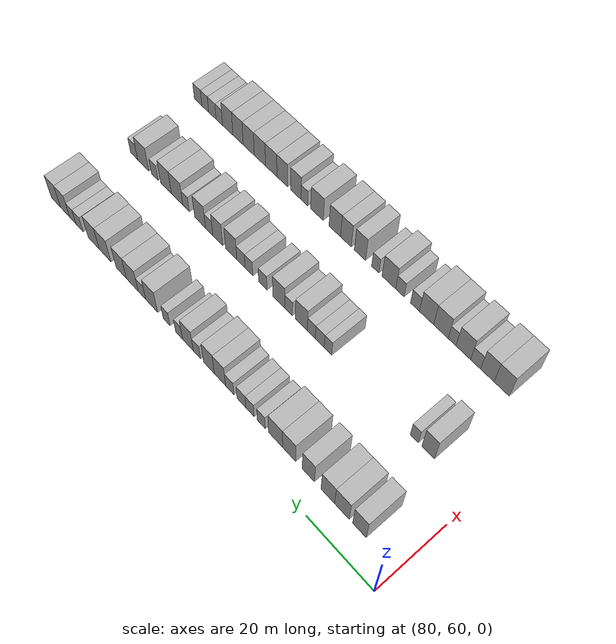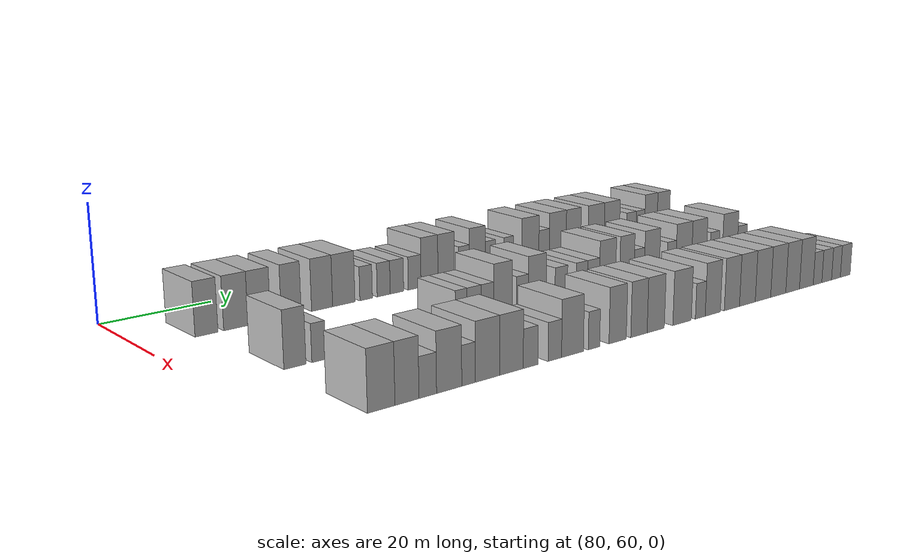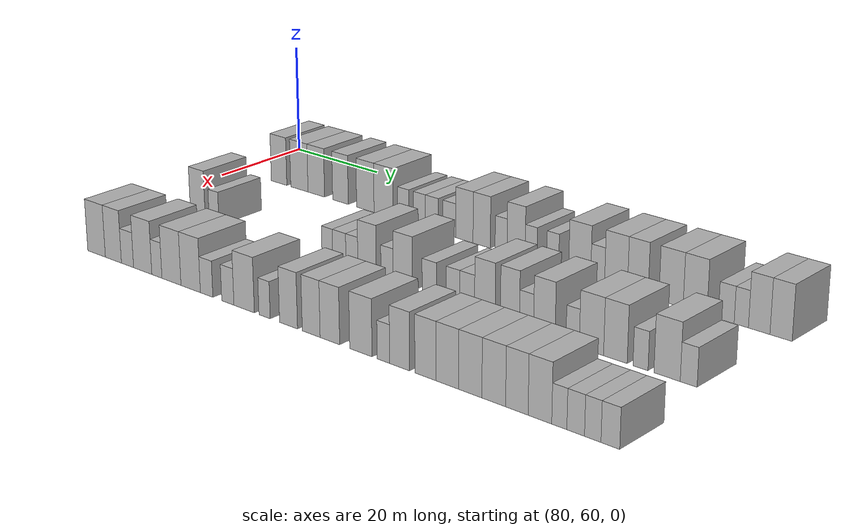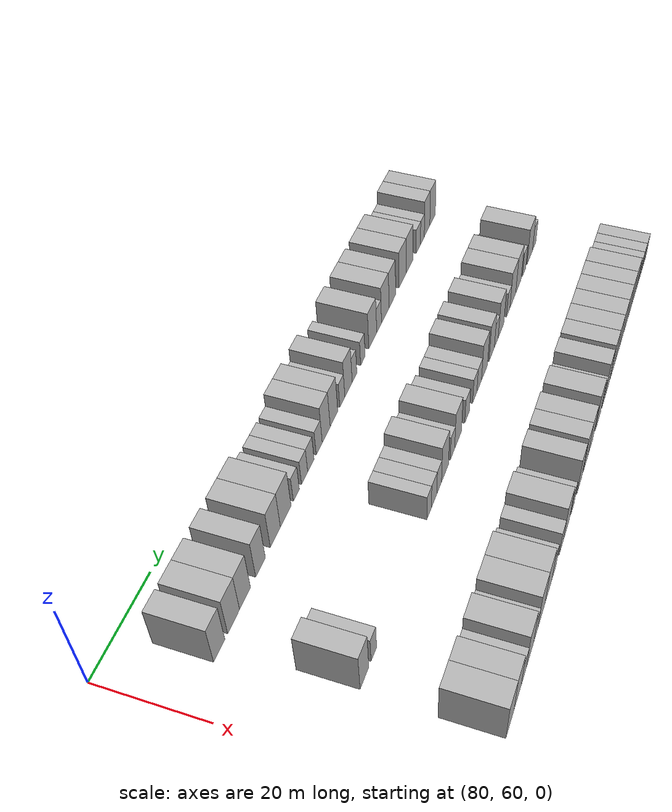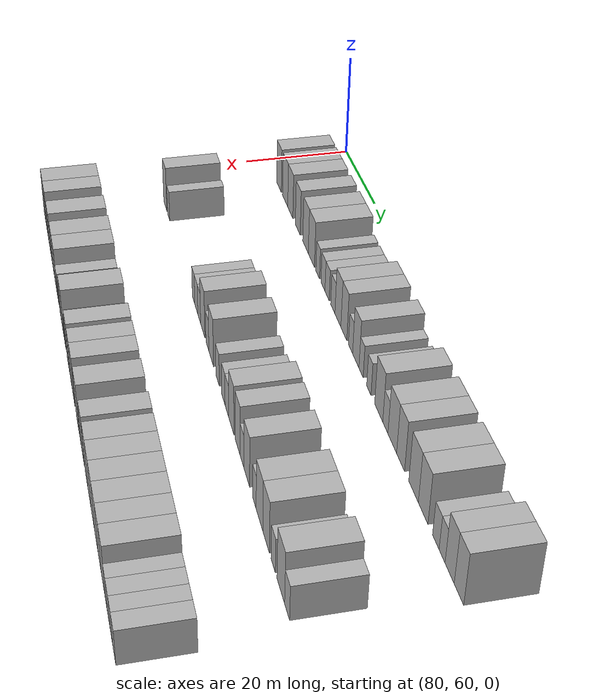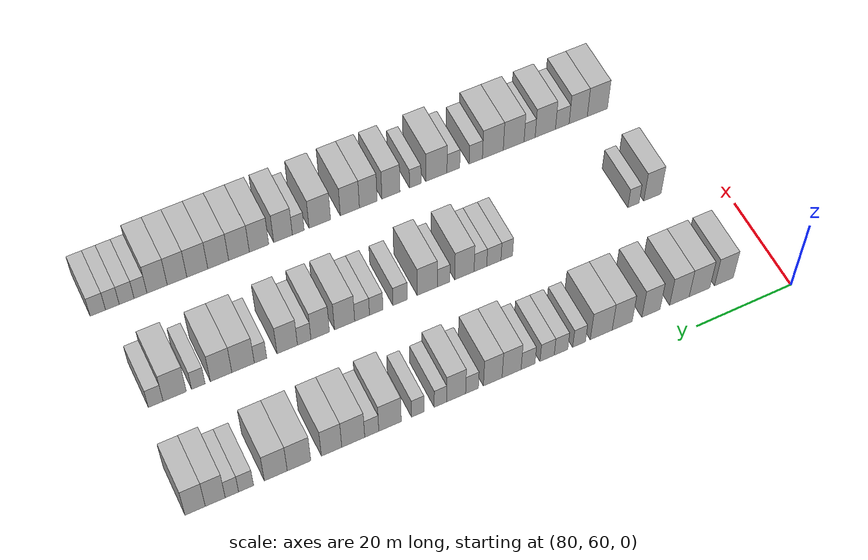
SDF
<sdf version="1.6">
 <world name="default">
  <model name="building_674">
   <static>1</static>
   <pose>91.0000 70.7564 0 0.000000 0.000000 0.000000</pose>
   <link name="link">
    <pose>0 0 4.50 0 0 0</pose>
    <collision name="collision"><geometry><box><size>10.0000 3.9855 9.0000</size></box></geometry></collision>
    <visual name="visual">
     <cast_shadows>0</cast_shadows>
     <geometry><box><size>10.0000 3.9855 9.0000</size></box></geometry>
     <material>
      <script>
       <uri>model://HANNAS_wall/materials/scripts</uri>
       <uri>model://HANNAS_wall/materials/textures</uri>
       <name>vrc/HANNAS_wall</name>
      </script>
     </material>
    </visual>
   </link>
  </model>
  <model name="building_675">
   <static>1</static>
   <pose>91.0000 75.9270 0 0.000000 0.000000 0.000000</pose>
   <link name="link">
    <pose>0 0 4.50 0 0 0</pose>
    <collision name="collision"><geometry><box><size>10.0000 4.3556 9.0000</size></box></geometry></collision>
    <visual name="visual">
     <cast_shadows>0</cast_shadows>
     <geometry><box><size>10.0000 4.3556 9.0000</size></box></geometry>
     <material>
      <script>
       <uri>model://HANNAS_wall/materials/scripts</uri>
       <uri>model://HANNAS_wall/materials/textures</uri>
       <name>vrc/HANNAS_wall</name>
      </script>
     </material>
    </visual>
   </link>
  </model>
  <model name="building_676">
   <static>1</static>
   <pose>91.0000 80.1607 0 0.000000 0.000000 0.000000</pose>
   <link name="link">
    <pose>0 0 4.50 0 0 0</pose>
    <collision name="collision"><geometry><box><size>10.0000 4.1119 9.0000</size></box></geometry></collision>
    <visual name="visual">
     <cast_shadows>0</cast_shadows>
     <geometry><box><size>10.0000 4.1119 9.0000</size></box></geometry>
     <material>
      <script>
       <uri>model://HANNAS_wall/materials/scripts</uri>
       <uri>model://HANNAS_wall/materials/textures</uri>
       <name>vrc/HANNAS_wall</name>
      </script>
     </material>
    </visual>
   </link>
  </model>
  <model name="building_677">
   <static>1</static>
   <pose>91.0000 86.1120 0 0.000000 0.000000 0.000000</pose>
   <link name="link">
    <pose>0 0 4.50 0 0 0</pose>
    <collision name="collision"><geometry><box><size>10.0000 3.7906 9.0000</size></box></geometry></collision>
    <visual name="visual">
     <cast_shadows>0</cast_shadows>
     <geometry><box><size>10.0000 3.7906 9.0000</size></box></geometry>
     <material>
      <script>
       <uri>model://HANNAS_wall/materials/scripts</uri>
       <uri>model://HANNAS_wall/materials/textures</uri>
       <name>vrc/HANNAS_wall</name>
      </script>
     </material>
    </visual>
   </link>
  </model>
  <model name="building_678">
   <static>1</static>
   <pose>91.0000 92.0778 0 0.000000 0.000000 0.000000</pose>
   <link name="link">
    <pose>0 0 4.50 0 0 0</pose>
    <collision name="collision"><geometry><box><size>10.0000 4.1410 9.0000</size></box></geometry></collision>
    <visual name="visual">
     <cast_shadows>0</cast_shadows>
     <geometry><box><size>10.0000 4.1410 9.0000</size></box></geometry>
     <material>
      <script>
       <uri>model://HANNAS_wall/materials/scripts</uri>
       <uri>model://HANNAS_wall/materials/textures</uri>
       <name>vrc/HANNAS_wall</name>
      </script>
     </material>
    </visual>
   </link>
  </model>
  <model name="building_679">
   <static>1</static>
   <pose>91.0000 96.3968 0 0.000000 0.000000 0.000000</pose>
   <link name="link">
    <pose>0 0 4.50 0 0 0</pose>
    <collision name="collision"><geometry><box><size>10.0000 4.4971 9.0000</size></box></geometry></collision>
    <visual name="visual">
     <cast_shadows>0</cast_shadows>
     <geometry><box><size>10.0000 4.4971 9.0000</size></box></geometry>
     <material>
      <script>
       <uri>model://HANNAS_wall/materials/scripts</uri>
       <uri>model://HANNAS_wall/materials/textures</uri>
       <name>vrc/HANNAS_wall</name>
      </script>
     </material>
    </visual>
   </link>
  </model>
  <model name="building_680">
   <static>1</static>
   <pose>91.0000 100.9475 0 0.000000 0.000000 0.000000</pose>
   <link name="link">
    <pose>0 0 3.00 0 0 0</pose>
    <collision name="collision"><geometry><box><size>10.0000 2.6044 6.0000</size></box></geometry></collision>
    <visual name="visual">
     <cast_shadows>0</cast_shadows>
     <geometry><box><size>10.0000 2.6044 6.0000</size></box></geometry>
     <material>
      <script>
       <uri>model://HANNAS_wall/materials/scripts</uri>
       <uri>model://HANNAS_wall/materials/textures</uri>
       <name>vrc/HANNAS_wall</name>
      </script>
     </material>
    </visual>
   </link>
  </model>
  <model name="building_681">
   <static>1</static>
   <pose>91.0000 104.6256 0 0.000000 0.000000 0.000000</pose>
   <link name="link">
    <pose>0 0 3.00 0 0 0</pose>
    <collision name="collision"><geometry><box><size>10.0000 2.7519 6.0000</size></box></geometry></collision>
    <visual name="visual">
     <cast_shadows>0</cast_shadows>
     <geometry><box><size>10.0000 2.7519 6.0000</size></box></geometry>
     <material>
      <script>
       <uri>model://HANNAS_wall/materials/scripts</uri>
       <uri>model://HANNAS_wall/materials/textures</uri>
       <name>vrc/HANNAS_wall</name>
      </script>
     </material>
    </visual>
   </link>
  </model>
  <model name="building_682">
   <static>1</static>
   <pose>91.0000 107.4421 0 0.000000 0.000000 0.000000</pose>
   <link name="link">
    <pose>0 0 3.00 0 0 0</pose>
    <collision name="collision"><geometry><box><size>10.0000 2.8810 6.0000</size></box></geometry></collision>
    <visual name="visual">
     <cast_shadows>0</cast_shadows>
     <geometry><box><size>10.0000 2.8810 6.0000</size></box></geometry>
     <material>
      <script>
       <uri>model://HANNAS_wall/materials/scripts</uri>
       <uri>model://HANNAS_wall/materials/textures</uri>
       <name>vrc/HANNAS_wall</name>
      </script>
     </material>
    </visual>
   </link>
  </model>
  <model name="building_683">
   <static>1</static>
   <pose>91.0000 111.2855 0 0.000000 0.000000 0.000000</pose>
   <link name="link">
    <pose>0 0 3.00 0 0 0</pose>
    <collision name="collision"><geometry><box><size>10.0000 2.8058 6.0000</size></box></geometry></collision>
    <visual name="visual">
     <cast_shadows>0</cast_shadows>
     <geometry><box><size>10.0000 2.8058 6.0000</size></box></geometry>
     <material>
      <script>
       <uri>model://HANNAS_wall/materials/scripts</uri>
       <uri>model://HANNAS_wall/materials/textures</uri>
       <name>vrc/HANNAS_wall</name>
      </script>
     </material>
    </visual>
   </link>
  </model>
  <model name="building_684">
   <static>1</static>
   <pose>91.0000 114.5860 0 0.000000 0.000000 0.000000</pose>
   <link name="link">
    <pose>0 0 4.50 0 0 0</pose>
    <collision name="collision"><geometry><box><size>10.0000 3.7952 9.0000</size></box></geometry></collision>
    <visual name="visual">
     <cast_shadows>0</cast_shadows>
     <geometry><box><size>10.0000 3.7952 9.0000</size></box></geometry>
     <material>
      <script>
       <uri>model://HANNAS_wall/materials/scripts</uri>
       <uri>model://HANNAS_wall/materials/textures</uri>
       <name>vrc/HANNAS_wall</name>
      </script>
     </material>
    </visual>
   </link>
  </model>
  <model name="building_685">
   <static>1</static>
   <pose>91.0000 118.3412 0 0.000000 0.000000 0.000000</pose>
   <link name="link">
    <pose>0 0 4.50 0 0 0</pose>
    <collision name="collision"><geometry><box><size>10.0000 3.7152 9.0000</size></box></geometry></collision>
    <visual name="visual">
     <cast_shadows>0</cast_shadows>
     <geometry><box><size>10.0000 3.7152 9.0000</size></box></geometry>
     <material>
      <script>
       <uri>model://HANNAS_wall/materials/scripts</uri>
       <uri>model://HANNAS_wall/materials/textures</uri>
       <name>vrc/HANNAS_wall</name>
      </script>
     </material>
    </visual>
   </link>
  </model>
  <model name="building_686">
   <static>1</static>
   <pose>91.0000 122.4623 0 0.000000 0.000000 0.000000</pose>
   <link name="link">
    <pose>0 0 3.00 0 0 0</pose>
    <collision name="collision"><geometry><box><size>10.0000 2.5271 6.0000</size></box></geometry></collision>
    <visual name="visual">
     <cast_shadows>0</cast_shadows>
     <geometry><box><size>10.0000 2.5271 6.0000</size></box></geometry>
     <material>
      <script>
       <uri>model://HANNAS_wall/materials/scripts</uri>
       <uri>model://HANNAS_wall/materials/textures</uri>
       <name>vrc/HANNAS_wall</name>
      </script>
     </material>
    </visual>
   </link>
  </model>
  <model name="building_687">
   <static>1</static>
   <pose>91.0000 125.6069 0 0.000000 0.000000 0.000000</pose>
   <link name="link">
    <pose>0 0 4.50 0 0 0</pose>
    <collision name="collision"><geometry><box><size>10.0000 3.7621 9.0000</size></box></geometry></collision>
    <visual name="visual">
     <cast_shadows>0</cast_shadows>
     <geometry><box><size>10.0000 3.7621 9.0000</size></box></geometry>
     <material>
      <script>
       <uri>model://HANNAS_wall/materials/scripts</uri>
       <uri>model://HANNAS_wall/materials/textures</uri>
       <name>vrc/HANNAS_wall</name>
      </script>
     </material>
    </visual>
   </link>
  </model>
  <model name="building_688">
   <static>1</static>
   <pose>91.0000 128.6963 0 0.000000 0.000000 0.000000</pose>
   <link name="link">
    <pose>0 0 3.00 0 0 0</pose>
    <collision name="collision"><geometry><box><size>10.0000 2.4166 6.0000</size></box></geometry></collision>
    <visual name="visual">
     <cast_shadows>0</cast_shadows>
     <geometry><box><size>10.0000 2.4166 6.0000</size></box></geometry>
     <material>
      <script>
       <uri>model://HANNAS_wall/materials/scripts</uri>
       <uri>model://HANNAS_wall/materials/textures</uri>
       <name>vrc/HANNAS_wall</name>
      </script>
     </material>
    </visual>
   </link>
  </model>
  <model name="building_689">
   <static>1</static>
   <pose>91.0000 133.1181 0 0.000000 0.000000 0.000000</pose>
   <link name="link">
    <pose>0 0 3.00 0 0 0</pose>
    <collision name="collision"><geometry><box><size>10.0000 2.4272 6.0000</size></box></geometry></collision>
    <visual name="visual">
     <cast_shadows>0</cast_shadows>
     <geometry><box><size>10.0000 2.4272 6.0000</size></box></geometry>
     <material>
      <script>
       <uri>model://HANNAS_wall/materials/scripts</uri>
       <uri>model://HANNAS_wall/materials/textures</uri>
       <name>vrc/HANNAS_wall</name>
      </script>
     </material>
    </visual>
   </link>
  </model>
  <model name="building_690">
   <static>1</static>
   <pose>91.0000 138.5089 0 0.000000 0.000000 0.000000</pose>
   <link name="link">
    <pose>0 0 4.50 0 0 0</pose>
    <collision name="collision"><geometry><box><size>10.0000 4.3544 9.0000</size></box></geometry></collision>
    <visual name="visual">
     <cast_shadows>0</cast_shadows>
     <geometry><box><size>10.0000 4.3544 9.0000</size></box></geometry>
     <material>
      <script>
       <uri>model://HANNAS_wall/materials/scripts</uri>
       <uri>model://HANNAS_wall/materials/textures</uri>
       <name>vrc/HANNAS_wall</name>
      </script>
     </material>
    </visual>
   </link>
  </model>
  <model name="building_691">
   <static>1</static>
   <pose>91.0000 142.0402 0 0.000000 0.000000 0.000000</pose>
   <link name="link">
    <pose>0 0 3.00 0 0 0</pose>
    <collision name="collision"><geometry><box><size>10.0000 2.7080 6.0000</size></box></geometry></collision>
    <visual name="visual">
     <cast_shadows>0</cast_shadows>
     <geometry><box><size>10.0000 2.7080 6.0000</size></box></geometry>
     <material>
      <script>
       <uri>model://HANNAS_wall/materials/scripts</uri>
       <uri>model://HANNAS_wall/materials/textures</uri>
       <name>vrc/HANNAS_wall</name>
      </script>
     </material>
    </visual>
   </link>
  </model>
  <model name="building_692">
   <static>1</static>
   <pose>91.0000 145.5896 0 0.000000 0.000000 0.000000</pose>
   <link name="link">
    <pose>0 0 4.50 0 0 0</pose>
    <collision name="collision"><geometry><box><size>10.0000 4.3909 9.0000</size></box></geometry></collision>
    <visual name="visual">
     <cast_shadows>0</cast_shadows>
     <geometry><box><size>10.0000 4.3909 9.0000</size></box></geometry>
     <material>
      <script>
       <uri>model://HANNAS_wall/materials/scripts</uri>
       <uri>model://HANNAS_wall/materials/textures</uri>
       <name>vrc/HANNAS_wall</name>
      </script>
     </material>
    </visual>
   </link>
  </model>
  <model name="building_693">
   <static>1</static>
   <pose>91.0000 149.7306 0 0.000000 0.000000 0.000000</pose>
   <link name="link">
    <pose>0 0 4.50 0 0 0</pose>
    <collision name="collision"><geometry><box><size>10.0000 3.8910 9.0000</size></box></geometry></collision>
    <visual name="visual">
     <cast_shadows>0</cast_shadows>
     <geometry><box><size>10.0000 3.8910 9.0000</size></box></geometry>
     <material>
      <script>
       <uri>model://HANNAS_wall/materials/scripts</uri>
       <uri>model://HANNAS_wall/materials/textures</uri>
       <name>vrc/HANNAS_wall</name>
      </script>
     </material>
    </visual>
   </link>
  </model>
  <model name="building_694">
   <static>1</static>
   <pose>91.0000 155.8999 0 0.000000 0.000000 0.000000</pose>
   <link name="link">
    <pose>0 0 4.50 0 0 0</pose>
    <collision name="collision"><geometry><box><size>10.0000 4.4476 9.0000</size></box></geometry></collision>
    <visual name="visual">
     <cast_shadows>0</cast_shadows>
     <geometry><box><size>10.0000 4.4476 9.0000</size></box></geometry>
     <material>
      <script>
       <uri>model://HANNAS_wall/materials/scripts</uri>
       <uri>model://HANNAS_wall/materials/textures</uri>
       <name>vrc/HANNAS_wall</name>
      </script>
     </material>
    </visual>
   </link>
  </model>
  <model name="building_695">
   <static>1</static>
   <pose>91.0000 160.2769 0 0.000000 0.000000 0.000000</pose>
   <link name="link">
    <pose>0 0 4.50 0 0 0</pose>
    <collision name="collision"><geometry><box><size>10.0000 4.3065 9.0000</size></box></geometry></collision>
    <visual name="visual">
     <cast_shadows>0</cast_shadows>
     <geometry><box><size>10.0000 4.3065 9.0000</size></box></geometry>
     <material>
      <script>
       <uri>model://HANNAS_wall/materials/scripts</uri>
       <uri>model://HANNAS_wall/materials/textures</uri>
       <name>vrc/HANNAS_wall</name>
      </script>
     </material>
    </visual>
   </link>
  </model>
  <model name="building_696">
   <static>1</static>
   <pose>91.0000 165.8252 0 0.000000 0.000000 0.000000</pose>
   <link name="link">
    <pose>0 0 3.00 0 0 0</pose>
    <collision name="collision"><geometry><box><size>10.0000 2.7901 6.0000</size></box></geometry></collision>
    <visual name="visual">
     <cast_shadows>0</cast_shadows>
     <geometry><box><size>10.0000 2.7901 6.0000</size></box></geometry>
     <material>
      <script>
       <uri>model://HANNAS_wall/materials/scripts</uri>
       <uri>model://HANNAS_wall/materials/textures</uri>
       <name>vrc/HANNAS_wall</name>
      </script>
     </material>
    </visual>
   </link>
  </model>
  <model name="building_697">
   <static>1</static>
   <pose>91.0000 168.4584 0 0.000000 0.000000 0.000000</pose>
   <link name="link">
    <pose>0 0 3.00 0 0 0</pose>
    <collision name="collision"><geometry><box><size>10.0000 2.4763 6.0000</size></box></geometry></collision>
    <visual name="visual">
     <cast_shadows>0</cast_shadows>
     <geometry><box><size>10.0000 2.4763 6.0000</size></box></geometry>
     <material>
      <script>
       <uri>model://HANNAS_wall/materials/scripts</uri>
       <uri>model://HANNAS_wall/materials/textures</uri>
       <name>vrc/HANNAS_wall</name>
      </script>
     </material>
    </visual>
   </link>
  </model>
  <model name="building_698">
   <static>1</static>
   <pose>91.0000 171.5422 0 0.000000 0.000000 0.000000</pose>
   <link name="link">
    <pose>0 0 4.50 0 0 0</pose>
    <collision name="collision"><geometry><box><size>10.0000 3.6912 9.0000</size></box></geometry></collision>
    <visual name="visual">
     <cast_shadows>0</cast_shadows>
     <geometry><box><size>10.0000 3.6912 9.0000</size></box></geometry>
     <material>
      <script>
       <uri>model://HANNAS_wall/materials/scripts</uri>
       <uri>model://HANNAS_wall/materials/textures</uri>
       <name>vrc/HANNAS_wall</name>
      </script>
     </material>
    </visual>
   </link>
  </model>
  <model name="building_699">
   <static>1</static>
   <pose>91.0000 175.2581 0 0.000000 0.000000 0.000000</pose>
   <link name="link">
    <pose>0 0 4.50 0 0 0</pose>
    <collision name="collision"><geometry><box><size>10.0000 3.7407 9.0000</size></box></geometry></collision>
    <visual name="visual">
     <cast_shadows>0</cast_shadows>
     <geometry><box><size>10.0000 3.7407 9.0000</size></box></geometry>
     <material>
      <script>
       <uri>model://HANNAS_wall/materials/scripts</uri>
       <uri>model://HANNAS_wall/materials/textures</uri>
       <name>vrc/HANNAS_wall</name>
      </script>
     </material>
    </visual>
   </link>
  </model>
  <model name="building_858">
   <static>1</static>
   <pose>113.0000 73.3477 0 0.000000 0.000000 0.000000</pose>
   <link name="link">
    <pose>0 0 4.50 0 0 0</pose>
    <collision name="collision"><geometry><box><size>10.0000 3.7284 9.0000</size></box></geometry></collision>
    <visual name="visual">
     <cast_shadows>0</cast_shadows>
     <geometry><box><size>10.0000 3.7284 9.0000</size></box></geometry>
     <material>
      <script>
       <uri>model://HANNAS_wall/materials/scripts</uri>
       <uri>model://HANNAS_wall/materials/textures</uri>
       <name>vrc/HANNAS_wall</name>
      </script>
     </material>
    </visual>
   </link>
  </model>
  <model name="building_859">
   <static>1</static>
   <pose>113.0000 77.4248 0 0.000000 0.000000 0.000000</pose>
   <link name="link">
    <pose>0 0 3.00 0 0 0</pose>
    <collision name="collision"><geometry><box><size>10.0000 2.4257 6.0000</size></box></geometry></collision>
    <visual name="visual">
     <cast_shadows>0</cast_shadows>
     <geometry><box><size>10.0000 2.4257 6.0000</size></box></geometry>
     <material>
      <script>
       <uri>model://HANNAS_wall/materials/scripts</uri>
       <uri>model://HANNAS_wall/materials/textures</uri>
       <name>vrc/HANNAS_wall</name>
      </script>
     </material>
    </visual>
   </link>
  </model>
  <model name="building_860">
   <static>1</static>
   <pose>113.0000 104.2525 0 0.000000 0.000000 0.000000</pose>
   <link name="link">
    <pose>0 0 3.00 0 0 0</pose>
    <collision name="collision"><geometry><box><size>10.0000 2.4099 6.0000</size></box></geometry></collision>
    <visual name="visual">
     <cast_shadows>0</cast_shadows>
     <geometry><box><size>10.0000 2.4099 6.0000</size></box></geometry>
     <material>
      <script>
       <uri>model://HANNAS_wall/materials/scripts</uri>
       <uri>model://HANNAS_wall/materials/textures</uri>
       <name>vrc/HANNAS_wall</name>
      </script>
     </material>
    </visual>
   </link>
  </model>
  <model name="building_861">
   <static>1</static>
   <pose>113.0000 106.9293 0 0.000000 0.000000 0.000000</pose>
   <link name="link">
    <pose>0 0 3.00 0 0 0</pose>
    <collision name="collision"><geometry><box><size>10.0000 2.9437 6.0000</size></box></geometry></collision>
    <visual name="visual">
     <cast_shadows>0</cast_shadows>
     <geometry><box><size>10.0000 2.9437 6.0000</size></box></geometry>
     <material>
      <script>
       <uri>model://HANNAS_wall/materials/scripts</uri>
       <uri>model://HANNAS_wall/materials/textures</uri>
       <name>vrc/HANNAS_wall</name>
      </script>
     </material>
    </visual>
   </link>
  </model>
  <model name="building_862">
   <static>1</static>
   <pose>113.0000 109.7080 0 0.000000 0.000000 0.000000</pose>
   <link name="link">
    <pose>0 0 3.00 0 0 0</pose>
    <collision name="collision"><geometry><box><size>10.0000 2.6137 6.0000</size></box></geometry></collision>
    <visual name="visual">
     <cast_shadows>0</cast_shadows>
     <geometry><box><size>10.0000 2.6137 6.0000</size></box></geometry>
     <material>
      <script>
       <uri>model://HANNAS_wall/materials/scripts</uri>
       <uri>model://HANNAS_wall/materials/textures</uri>
       <name>vrc/HANNAS_wall</name>
      </script>
     </material>
    </visual>
   </link>
  </model>
  <model name="building_863">
   <static>1</static>
   <pose>113.0000 113.0044 0 0.000000 0.000000 0.000000</pose>
   <link name="link">
    <pose>0 0 4.50 0 0 0</pose>
    <collision name="collision"><geometry><box><size>10.0000 3.9791 9.0000</size></box></geometry></collision>
    <visual name="visual">
     <cast_shadows>0</cast_shadows>
     <geometry><box><size>10.0000 3.9791 9.0000</size></box></geometry>
     <material>
      <script>
       <uri>model://HANNAS_wall/materials/scripts</uri>
       <uri>model://HANNAS_wall/materials/textures</uri>
       <name>vrc/HANNAS_wall</name>
      </script>
     </material>
    </visual>
   </link>
  </model>
  <model name="building_864">
   <static>1</static>
   <pose>113.0000 117.2807 0 0.000000 0.000000 0.000000</pose>
   <link name="link">
    <pose>0 0 3.00 0 0 0</pose>
    <collision name="collision"><geometry><box><size>10.0000 2.5735 6.0000</size></box></geometry></collision>
    <visual name="visual">
     <cast_shadows>0</cast_shadows>
     <geometry><box><size>10.0000 2.5735 6.0000</size></box></geometry>
     <material>
      <script>
       <uri>model://HANNAS_wall/materials/scripts</uri>
       <uri>model://HANNAS_wall/materials/textures</uri>
       <name>vrc/HANNAS_wall</name>
      </script>
     </material>
    </visual>
   </link>
  </model>
  <model name="building_865">
   <static>1</static>
   <pose>113.0000 120.5992 0 0.000000 0.000000 0.000000</pose>
   <link name="link">
    <pose>0 0 4.50 0 0 0</pose>
    <collision name="collision"><geometry><box><size>10.0000 4.0636 9.0000</size></box></geometry></collision>
    <visual name="visual">
     <cast_shadows>0</cast_shadows>
     <geometry><box><size>10.0000 4.0636 9.0000</size></box></geometry>
     <material>
      <script>
       <uri>model://HANNAS_wall/materials/scripts</uri>
       <uri>model://HANNAS_wall/materials/textures</uri>
       <name>vrc/HANNAS_wall</name>
      </script>
     </material>
    </visual>
   </link>
  </model>
  <model name="building_866">
   <static>1</static>
   <pose>113.0000 126.0811 0 0.000000 0.000000 0.000000</pose>
   <link name="link">
    <pose>0 0 3.00 0 0 0</pose>
    <collision name="collision"><geometry><box><size>10.0000 2.9002 6.0000</size></box></geometry></collision>
    <visual name="visual">
     <cast_shadows>0</cast_shadows>
     <geometry><box><size>10.0000 2.9002 6.0000</size></box></geometry>
     <material>
      <script>
       <uri>model://HANNAS_wall/materials/scripts</uri>
       <uri>model://HANNAS_wall/materials/textures</uri>
       <name>vrc/HANNAS_wall</name>
      </script>
     </material>
    </visual>
   </link>
  </model>
  <model name="building_867">
   <static>1</static>
   <pose>113.0000 130.8853 0 0.000000 0.000000 0.000000</pose>
   <link name="link">
    <pose>0 0 3.00 0 0 0</pose>
    <collision name="collision"><geometry><box><size>10.0000 2.7083 6.0000</size></box></geometry></collision>
    <visual name="visual">
     <cast_shadows>0</cast_shadows>
     <geometry><box><size>10.0000 2.7083 6.0000</size></box></geometry>
     <material>
      <script>
       <uri>model://HANNAS_wall/materials/scripts</uri>
       <uri>model://HANNAS_wall/materials/textures</uri>
       <name>vrc/HANNAS_wall</name>
      </script>
     </material>
    </visual>
   </link>
  </model>
  <model name="building_868">
   <static>1</static>
   <pose>113.0000 133.7141 0 0.000000 0.000000 0.000000</pose>
   <link name="link">
    <pose>0 0 3.00 0 0 0</pose>
    <collision name="collision"><geometry><box><size>10.0000 2.9492 6.0000</size></box></geometry></collision>
    <visual name="visual">
     <cast_shadows>0</cast_shadows>
     <geometry><box><size>10.0000 2.9492 6.0000</size></box></geometry>
     <material>
      <script>
       <uri>model://HANNAS_wall/materials/scripts</uri>
       <uri>model://HANNAS_wall/materials/textures</uri>
       <name>vrc/HANNAS_wall</name>
      </script>
     </material>
    </visual>
   </link>
  </model>
  <model name="building_869">
   <static>1</static>
   <pose>113.0000 137.1981 0 0.000000 0.000000 0.000000</pose>
   <link name="link">
    <pose>0 0 4.50 0 0 0</pose>
    <collision name="collision"><geometry><box><size>10.0000 4.0188 9.0000</size></box></geometry></collision>
    <visual name="visual">
     <cast_shadows>0</cast_shadows>
     <geometry><box><size>10.0000 4.0188 9.0000</size></box></geometry>
     <material>
      <script>
       <uri>model://HANNAS_wall/materials/scripts</uri>
       <uri>model://HANNAS_wall/materials/textures</uri>
       <name>vrc/HANNAS_wall</name>
      </script>
     </material>
    </visual>
   </link>
  </model>
  <model name="building_870">
   <static>1</static>
   <pose>113.0000 142.0273 0 0.000000 0.000000 0.000000</pose>
   <link name="link">
    <pose>0 0 4.50 0 0 0</pose>
    <collision name="collision"><geometry><box><size>10.0000 3.6395 9.0000</size></box></geometry></collision>
    <visual name="visual">
     <cast_shadows>0</cast_shadows>
     <geometry><box><size>10.0000 3.6395 9.0000</size></box></geometry>
     <material>
      <script>
       <uri>model://HANNAS_wall/materials/scripts</uri>
       <uri>model://HANNAS_wall/materials/textures</uri>
       <name>vrc/HANNAS_wall</name>
      </script>
     </material>
    </visual>
   </link>
  </model>
  <model name="building_871">
   <static>1</static>
   <pose>113.0000 145.1772 0 0.000000 0.000000 0.000000</pose>
   <link name="link">
    <pose>0 0 3.00 0 0 0</pose>
    <collision name="collision"><geometry><box><size>10.0000 2.6604 6.0000</size></box></geometry></collision>
    <visual name="visual">
     <cast_shadows>0</cast_shadows>
     <geometry><box><size>10.0000 2.6604 6.0000</size></box></geometry>
     <material>
      <script>
       <uri>model://HANNAS_wall/materials/scripts</uri>
       <uri>model://HANNAS_wall/materials/textures</uri>
       <name>vrc/HANNAS_wall</name>
      </script>
     </material>
    </visual>
   </link>
  </model>
  <model name="building_872">
   <static>1</static>
   <pose>113.0000 148.5079 0 0.000000 0.000000 0.000000</pose>
   <link name="link">
    <pose>0 0 4.50 0 0 0</pose>
    <collision name="collision"><geometry><box><size>10.0000 4.0010 9.0000</size></box></geometry></collision>
    <visual name="visual">
     <cast_shadows>0</cast_shadows>
     <geometry><box><size>10.0000 4.0010 9.0000</size></box></geometry>
     <material>
      <script>
       <uri>model://HANNAS_wall/materials/scripts</uri>
       <uri>model://HANNAS_wall/materials/textures</uri>
       <name>vrc/HANNAS_wall</name>
      </script>
     </material>
    </visual>
   </link>
  </model>
  <model name="building_873">
   <static>1</static>
   <pose>113.0000 153.7145 0 0.000000 0.000000 0.000000</pose>
   <link name="link">
    <pose>0 0 3.00 0 0 0</pose>
    <collision name="collision"><geometry><box><size>10.0000 2.4120 6.0000</size></box></geometry></collision>
    <visual name="visual">
     <cast_shadows>0</cast_shadows>
     <geometry><box><size>10.0000 2.4120 6.0000</size></box></geometry>
     <material>
      <script>
       <uri>model://HANNAS_wall/materials/scripts</uri>
       <uri>model://HANNAS_wall/materials/textures</uri>
       <name>vrc/HANNAS_wall</name>
      </script>
     </material>
    </visual>
   </link>
  </model>
  <model name="building_874">
   <static>1</static>
   <pose>113.0000 157.0924 0 0.000000 0.000000 0.000000</pose>
   <link name="link">
    <pose>0 0 4.50 0 0 0</pose>
    <collision name="collision"><geometry><box><size>10.0000 4.3438 9.0000</size></box></geometry></collision>
    <visual name="visual">
     <cast_shadows>0</cast_shadows>
     <geometry><box><size>10.0000 4.3438 9.0000</size></box></geometry>
     <material>
      <script>
       <uri>model://HANNAS_wall/materials/scripts</uri>
       <uri>model://HANNAS_wall/materials/textures</uri>
       <name>vrc/HANNAS_wall</name>
      </script>
     </material>
    </visual>
   </link>
  </model>
  <model name="building_875">
   <static>1</static>
   <pose>113.0000 161.3317 0 0.000000 0.000000 0.000000</pose>
   <link name="link">
    <pose>0 0 4.50 0 0 0</pose>
    <collision name="collision"><geometry><box><size>10.0000 4.1349 9.0000</size></box></geometry></collision>
    <visual name="visual">
     <cast_shadows>0</cast_shadows>
     <geometry><box><size>10.0000 4.1349 9.0000</size></box></geometry>
     <material>
      <script>
       <uri>model://HANNAS_wall/materials/scripts</uri>
       <uri>model://HANNAS_wall/materials/textures</uri>
       <name>vrc/HANNAS_wall</name>
      </script>
     </material>
    </visual>
   </link>
  </model>
  <model name="building_876">
   <static>1</static>
   <pose>113.0000 165.6930 0 0.000000 0.000000 0.000000</pose>
   <link name="link">
    <pose>0 0 3.00 0 0 0</pose>
    <collision name="collision"><geometry><box><size>10.0000 2.5876 6.0000</size></box></geometry></collision>
    <visual name="visual">
     <cast_shadows>0</cast_shadows>
     <geometry><box><size>10.0000 2.5876 6.0000</size></box></geometry>
     <material>
      <script>
       <uri>model://HANNAS_wall/materials/scripts</uri>
       <uri>model://HANNAS_wall/materials/textures</uri>
       <name>vrc/HANNAS_wall</name>
      </script>
     </material>
    </visual>
   </link>
  </model>
  <model name="building_877">
   <static>1</static>
   <pose>113.0000 170.1986 0 0.000000 0.000000 0.000000</pose>
   <link name="link">
    <pose>0 0 4.50 0 0 0</pose>
    <collision name="collision"><geometry><box><size>10.0000 4.4238 9.0000</size></box></geometry></collision>
    <visual name="visual">
     <cast_shadows>0</cast_shadows>
     <geometry><box><size>10.0000 4.4238 9.0000</size></box></geometry>
     <material>
      <script>
       <uri>model://HANNAS_wall/materials/scripts</uri>
       <uri>model://HANNAS_wall/materials/textures</uri>
       <name>vrc/HANNAS_wall</name>
      </script>
     </material>
    </visual>
   </link>
  </model>
  <model name="building_878">
   <static>1</static>
   <pose>113.0000 173.8070 0 0.000000 0.000000 0.000000</pose>
   <link name="link">
    <pose>0 0 3.00 0 0 0</pose>
    <collision name="collision"><geometry><box><size>10.0000 2.7929 6.0000</size></box></geometry></collision>
    <visual name="visual">
     <cast_shadows>0</cast_shadows>
     <geometry><box><size>10.0000 2.7929 6.0000</size></box></geometry>
     <material>
      <script>
       <uri>model://HANNAS_wall/materials/scripts</uri>
       <uri>model://HANNAS_wall/materials/textures</uri>
       <name>vrc/HANNAS_wall</name>
      </script>
     </material>
    </visual>
   </link>
  </model>
  <model name="building_1039">
   <static>1</static>
   <pose>135.0000 73.1517 0 0.000000 0.000000 0.000000</pose>
   <link name="link">
    <pose>0 0 4.50 0 0 0</pose>
    <collision name="collision"><geometry><box><size>10.0000 4.4634 9.0000</size></box></geometry></collision>
    <visual name="visual">
     <cast_shadows>0</cast_shadows>
     <geometry><box><size>10.0000 4.4634 9.0000</size></box></geometry>
     <material>
      <script>
       <uri>model://HANNAS_wall/materials/scripts</uri>
       <uri>model://HANNAS_wall/materials/textures</uri>
       <name>vrc/HANNAS_wall</name>
      </script>
     </material>
    </visual>
   </link>
  </model>
  <model name="building_1040">
   <static>1</static>
   <pose>135.0000 77.3845 0 0.000000 0.000000 0.000000</pose>
   <link name="link">
    <pose>0 0 4.50 0 0 0</pose>
    <collision name="collision"><geometry><box><size>10.0000 4.0021 9.0000</size></box></geometry></collision>
    <visual name="visual">
     <cast_shadows>0</cast_shadows>
     <geometry><box><size>10.0000 4.0021 9.0000</size></box></geometry>
     <material>
      <script>
       <uri>model://HANNAS_wall/materials/scripts</uri>
       <uri>model://HANNAS_wall/materials/textures</uri>
       <name>vrc/HANNAS_wall</name>
      </script>
     </material>
    </visual>
   </link>
  </model>
  <model name="building_1041">
   <static>1</static>
   <pose>135.0000 80.8827 0 0.000000 0.000000 0.000000</pose>
   <link name="link">
    <pose>0 0 3.00 0 0 0</pose>
    <collision name="collision"><geometry><box><size>10.0000 2.9943 6.0000</size></box></geometry></collision>
    <visual name="visual">
     <cast_shadows>0</cast_shadows>
     <geometry><box><size>10.0000 2.9943 6.0000</size></box></geometry>
     <material>
      <script>
       <uri>model://HANNAS_wall/materials/scripts</uri>
       <uri>model://HANNAS_wall/materials/textures</uri>
       <name>vrc/HANNAS_wall</name>
      </script>
     </material>
    </visual>
   </link>
  </model>
  <model name="building_1042">
   <static>1</static>
   <pose>135.0000 84.5923 0 0.000000 0.000000 0.000000</pose>
   <link name="link">
    <pose>0 0 4.50 0 0 0</pose>
    <collision name="collision"><geometry><box><size>10.0000 4.4250 9.0000</size></box></geometry></collision>
    <visual name="visual">
     <cast_shadows>0</cast_shadows>
     <geometry><box><size>10.0000 4.4250 9.0000</size></box></geometry>
     <material>
      <script>
       <uri>model://HANNAS_wall/materials/scripts</uri>
       <uri>model://HANNAS_wall/materials/textures</uri>
       <name>vrc/HANNAS_wall</name>
      </script>
     </material>
    </visual>
   </link>
  </model>
  <model name="building_1043">
   <static>1</static>
   <pose>135.0000 88.0109 0 0.000000 0.000000 0.000000</pose>
   <link name="link">
    <pose>0 0 3.00 0 0 0</pose>
    <collision name="collision"><geometry><box><size>10.0000 2.4122 6.0000</size></box></geometry></collision>
    <visual name="visual">
     <cast_shadows>0</cast_shadows>
     <geometry><box><size>10.0000 2.4122 6.0000</size></box></geometry>
     <material>
      <script>
       <uri>model://HANNAS_wall/materials/scripts</uri>
       <uri>model://HANNAS_wall/materials/textures</uri>
       <name>vrc/HANNAS_wall</name>
      </script>
     </material>
    </visual>
   </link>
  </model>
  <model name="building_1044">
   <static>1</static>
   <pose>135.0000 91.4610 0 0.000000 0.000000 0.000000</pose>
   <link name="link">
    <pose>0 0 4.50 0 0 0</pose>
    <collision name="collision"><geometry><box><size>10.0000 4.4880 9.0000</size></box></geometry></collision>
    <visual name="visual">
     <cast_shadows>0</cast_shadows>
     <geometry><box><size>10.0000 4.4880 9.0000</size></box></geometry>
     <material>
      <script>
       <uri>model://HANNAS_wall/materials/scripts</uri>
       <uri>model://HANNAS_wall/materials/textures</uri>
       <name>vrc/HANNAS_wall</name>
      </script>
     </material>
    </visual>
   </link>
  </model>
  <model name="building_1045">
   <static>1</static>
   <pose>135.0000 95.9463 0 0.000000 0.000000 0.000000</pose>
   <link name="link">
    <pose>0 0 4.50 0 0 0</pose>
    <collision name="collision"><geometry><box><size>10.0000 4.4826 9.0000</size></box></geometry></collision>
    <visual name="visual">
     <cast_shadows>0</cast_shadows>
     <geometry><box><size>10.0000 4.4826 9.0000</size></box></geometry>
     <material>
      <script>
       <uri>model://HANNAS_wall/materials/scripts</uri>
       <uri>model://HANNAS_wall/materials/textures</uri>
       <name>vrc/HANNAS_wall</name>
      </script>
     </material>
    </visual>
   </link>
  </model>
  <model name="building_1046">
   <static>1</static>
   <pose>135.0000 99.6079 0 0.000000 0.000000 0.000000</pose>
   <link name="link">
    <pose>0 0 3.00 0 0 0</pose>
    <collision name="collision"><geometry><box><size>10.0000 2.8407 6.0000</size></box></geometry></collision>
    <visual name="visual">
     <cast_shadows>0</cast_shadows>
     <geometry><box><size>10.0000 2.8407 6.0000</size></box></geometry>
     <material>
      <script>
       <uri>model://HANNAS_wall/materials/scripts</uri>
       <uri>model://HANNAS_wall/materials/textures</uri>
       <name>vrc/HANNAS_wall</name>
      </script>
     </material>
    </visual>
   </link>
  </model>
  <model name="building_1047">
   <static>1</static>
   <pose>135.0000 104.3883 0 0.000000 0.000000 0.000000</pose>
   <link name="link">
    <pose>0 0 3.00 0 0 0</pose>
    <collision name="collision"><geometry><box><size>10.0000 2.7201 6.0000</size></box></geometry></collision>
    <visual name="visual">
     <cast_shadows>0</cast_shadows>
     <geometry><box><size>10.0000 2.7201 6.0000</size></box></geometry>
     <material>
      <script>
       <uri>model://HANNAS_wall/materials/scripts</uri>
       <uri>model://HANNAS_wall/materials/textures</uri>
       <name>vrc/HANNAS_wall</name>
      </script>
     </material>
    </visual>
   </link>
  </model>
  <model name="building_1048">
   <static>1</static>
   <pose>135.0000 107.9907 0 0.000000 0.000000 0.000000</pose>
   <link name="link">
    <pose>0 0 4.50 0 0 0</pose>
    <collision name="collision"><geometry><box><size>10.0000 4.4847 9.0000</size></box></geometry></collision>
    <visual name="visual">
     <cast_shadows>0</cast_shadows>
     <geometry><box><size>10.0000 4.4847 9.0000</size></box></geometry>
     <material>
      <script>
       <uri>model://HANNAS_wall/materials/scripts</uri>
       <uri>model://HANNAS_wall/materials/textures</uri>
       <name>vrc/HANNAS_wall</name>
      </script>
     </material>
    </visual>
   </link>
  </model>
  <model name="building_1049">
   <static>1</static>
   <pose>135.0000 112.4409 0 0.000000 0.000000 0.000000</pose>
   <link name="link">
    <pose>0 0 3.00 0 0 0</pose>
    <collision name="collision"><geometry><box><size>10.0000 2.4158 6.0000</size></box></geometry></collision>
    <visual name="visual">
     <cast_shadows>0</cast_shadows>
     <geometry><box><size>10.0000 2.4158 6.0000</size></box></geometry>
     <material>
      <script>
       <uri>model://HANNAS_wall/materials/scripts</uri>
       <uri>model://HANNAS_wall/materials/textures</uri>
       <name>vrc/HANNAS_wall</name>
      </script>
     </material>
    </visual>
   </link>
  </model>
  <model name="building_1050">
   <static>1</static>
   <pose>135.0000 117.5345 0 0.000000 0.000000 0.000000</pose>
   <link name="link">
    <pose>0 0 4.50 0 0 0</pose>
    <collision name="collision"><geometry><box><size>10.0000 3.7713 9.0000</size></box></geometry></collision>
    <visual name="visual">
     <cast_shadows>0</cast_shadows>
     <geometry><box><size>10.0000 3.7713 9.0000</size></box></geometry>
     <material>
      <script>
       <uri>model://HANNAS_wall/materials/scripts</uri>
       <uri>model://HANNAS_wall/materials/textures</uri>
       <name>vrc/HANNAS_wall</name>
      </script>
     </material>
    </visual>
   </link>
  </model>
  <model name="building_1051">
   <static>1</static>
   <pose>135.0000 122.2572 0 0.000000 0.000000 0.000000</pose>
   <link name="link">
    <pose>0 0 4.50 0 0 0</pose>
    <collision name="collision"><geometry><box><size>10.0000 3.6742 9.0000</size></box></geometry></collision>
    <visual name="visual">
     <cast_shadows>0</cast_shadows>
     <geometry><box><size>10.0000 3.6742 9.0000</size></box></geometry>
     <material>
      <script>
       <uri>model://HANNAS_wall/materials/scripts</uri>
       <uri>model://HANNAS_wall/materials/textures</uri>
       <name>vrc/HANNAS_wall</name>
      </script>
     </material>
    </visual>
   </link>
  </model>
  <model name="building_1052">
   <static>1</static>
   <pose>135.0000 126.0720 0 0.000000 0.000000 0.000000</pose>
   <link name="link">
    <pose>0 0 4.50 0 0 0</pose>
    <collision name="collision"><geometry><box><size>10.0000 3.9554 9.0000</size></box></geometry></collision>
    <visual name="visual">
     <cast_shadows>0</cast_shadows>
     <geometry><box><size>10.0000 3.9554 9.0000</size></box></geometry>
     <material>
      <script>
       <uri>model://HANNAS_wall/materials/scripts</uri>
       <uri>model://HANNAS_wall/materials/textures</uri>
       <name>vrc/HANNAS_wall</name>
      </script>
     </material>
    </visual>
   </link>
  </model>
  <model name="building_1053">
   <static>1</static>
   <pose>135.0000 132.2529 0 0.000000 0.000000 0.000000</pose>
   <link name="link">
    <pose>0 0 4.50 0 0 0</pose>
    <collision name="collision"><geometry><box><size>10.0000 4.4062 9.0000</size></box></geometry></collision>
    <visual name="visual">
     <cast_shadows>0</cast_shadows>
     <geometry><box><size>10.0000 4.4062 9.0000</size></box></geometry>
     <material>
      <script>
       <uri>model://HANNAS_wall/materials/scripts</uri>
       <uri>model://HANNAS_wall/materials/textures</uri>
       <name>vrc/HANNAS_wall</name>
      </script>
     </material>
    </visual>
   </link>
  </model>
  <model name="building_1054">
   <static>1</static>
   <pose>135.0000 136.6570 0 0.000000 0.000000 0.000000</pose>
   <link name="link">
    <pose>0 0 3.00 0 0 0</pose>
    <collision name="collision"><geometry><box><size>10.0000 2.4021 6.0000</size></box></geometry></collision>
    <visual name="visual">
     <cast_shadows>0</cast_shadows>
     <geometry><box><size>10.0000 2.4021 6.0000</size></box></geometry>
     <material>
      <script>
       <uri>model://HANNAS_wall/materials/scripts</uri>
       <uri>model://HANNAS_wall/materials/textures</uri>
       <name>vrc/HANNAS_wall</name>
      </script>
     </material>
    </visual>
   </link>
  </model>
  <model name="building_1055">
   <static>1</static>
   <pose>135.0000 139.7530 0 0.000000 0.000000 0.000000</pose>
   <link name="link">
    <pose>0 0 4.50 0 0 0</pose>
    <collision name="collision"><geometry><box><size>10.0000 3.7900 9.0000</size></box></geometry></collision>
    <visual name="visual">
     <cast_shadows>0</cast_shadows>
     <geometry><box><size>10.0000 3.7900 9.0000</size></box></geometry>
     <material>
      <script>
       <uri>model://HANNAS_wall/materials/scripts</uri>
       <uri>model://HANNAS_wall/materials/textures</uri>
       <name>vrc/HANNAS_wall</name>
      </script>
     </material>
    </visual>
   </link>
  </model>
  <model name="building_1056">
   <static>1</static>
   <pose>135.0000 144.5978 0 0.000000 0.000000 0.000000</pose>
   <link name="link">
    <pose>0 0 4.50 0 0 0</pose>
    <collision name="collision"><geometry><box><size>10.0000 3.8997 9.0000</size></box></geometry></collision>
    <visual name="visual">
     <cast_shadows>0</cast_shadows>
     <geometry><box><size>10.0000 3.8997 9.0000</size></box></geometry>
     <material>
      <script>
       <uri>model://HANNAS_wall/materials/scripts</uri>
       <uri>model://HANNAS_wall/materials/textures</uri>
       <name>vrc/HANNAS_wall</name>
      </script>
     </material>
    </visual>
   </link>
  </model>
  <model name="building_1057">
   <static>1</static>
   <pose>135.0000 148.6280 0 0.000000 0.000000 0.000000</pose>
   <link name="link">
    <pose>0 0 4.50 0 0 0</pose>
    <collision name="collision"><geometry><box><size>10.0000 4.1606 9.0000</size></box></geometry></collision>
    <visual name="visual">
     <cast_shadows>0</cast_shadows>
     <geometry><box><size>10.0000 4.1606 9.0000</size></box></geometry>
     <material>
      <script>
       <uri>model://HANNAS_wall/materials/scripts</uri>
       <uri>model://HANNAS_wall/materials/textures</uri>
       <name>vrc/HANNAS_wall</name>
      </script>
     </material>
    </visual>
   </link>
  </model>
  <model name="building_1058">
   <static>1</static>
   <pose>135.0000 152.7825 0 0.000000 0.000000 0.000000</pose>
   <link name="link">
    <pose>0 0 4.50 0 0 0</pose>
    <collision name="collision"><geometry><box><size>10.0000 4.1484 9.0000</size></box></geometry></collision>
    <visual name="visual">
     <cast_shadows>0</cast_shadows>
     <geometry><box><size>10.0000 4.1484 9.0000</size></box></geometry>
     <material>
      <script>
       <uri>model://HANNAS_wall/materials/scripts</uri>
       <uri>model://HANNAS_wall/materials/textures</uri>
       <name>vrc/HANNAS_wall</name>
      </script>
     </material>
    </visual>
   </link>
  </model>
  <model name="building_1059">
   <static>1</static>
   <pose>135.0000 156.9363 0 0.000000 0.000000 0.000000</pose>
   <link name="link">
    <pose>0 0 4.50 0 0 0</pose>
    <collision name="collision"><geometry><box><size>10.0000 4.1591 9.0000</size></box></geometry></collision>
    <visual name="visual">
     <cast_shadows>0</cast_shadows>
     <geometry><box><size>10.0000 4.1591 9.0000</size></box></geometry>
     <material>
      <script>
       <uri>model://HANNAS_wall/materials/scripts</uri>
       <uri>model://HANNAS_wall/materials/textures</uri>
       <name>vrc/HANNAS_wall</name>
      </script>
     </material>
    </visual>
   </link>
  </model>
  <model name="building_1060">
   <static>1</static>
   <pose>135.0000 160.9485 0 0.000000 0.000000 0.000000</pose>
   <link name="link">
    <pose>0 0 4.50 0 0 0</pose>
    <collision name="collision"><geometry><box><size>10.0000 3.8653 9.0000</size></box></geometry></collision>
    <visual name="visual">
     <cast_shadows>0</cast_shadows>
     <geometry><box><size>10.0000 3.8653 9.0000</size></box></geometry>
     <material>
      <script>
       <uri>model://HANNAS_wall/materials/scripts</uri>
       <uri>model://HANNAS_wall/materials/textures</uri>
       <name>vrc/HANNAS_wall</name>
      </script>
     </material>
    </visual>
   </link>
  </model>
  <model name="building_1061">
   <static>1</static>
   <pose>135.0000 164.8697 0 0.000000 0.000000 0.000000</pose>
   <link name="link">
    <pose>0 0 4.50 0 0 0</pose>
    <collision name="collision"><geometry><box><size>10.0000 3.9772 9.0000</size></box></geometry></collision>
    <visual name="visual">
     <cast_shadows>0</cast_shadows>
     <geometry><box><size>10.0000 3.9772 9.0000</size></box></geometry>
     <material>
      <script>
       <uri>model://HANNAS_wall/materials/scripts</uri>
       <uri>model://HANNAS_wall/materials/textures</uri>
       <name>vrc/HANNAS_wall</name>
      </script>
     </material>
    </visual>
   </link>
  </model>
  <model name="building_1062">
   <static>1</static>
   <pose>135.0000 168.1153 0 0.000000 0.000000 0.000000</pose>
   <link name="link">
    <pose>0 0 3.00 0 0 0</pose>
    <collision name="collision"><geometry><box><size>10.0000 2.5140 6.0000</size></box></geometry></collision>
    <visual name="visual">
     <cast_shadows>0</cast_shadows>
     <geometry><box><size>10.0000 2.5140 6.0000</size></box></geometry>
     <material>
      <script>
       <uri>model://HANNAS_wall/materials/scripts</uri>
       <uri>model://HANNAS_wall/materials/textures</uri>
       <name>vrc/HANNAS_wall</name>
      </script>
     </material>
    </visual>
   </link>
  </model>
  <model name="building_1063">
   <static>1</static>
   <pose>135.0000 170.8165 0 0.000000 0.000000 0.000000</pose>
   <link name="link">
    <pose>0 0 3.00 0 0 0</pose>
    <collision name="collision"><geometry><box><size>10.0000 2.8885 6.0000</size></box></geometry></collision>
    <visual name="visual">
     <cast_shadows>0</cast_shadows>
     <geometry><box><size>10.0000 2.8885 6.0000</size></box></geometry>
     <material>
      <script>
       <uri>model://HANNAS_wall/materials/scripts</uri>
       <uri>model://HANNAS_wall/materials/textures</uri>
       <name>vrc/HANNAS_wall</name>
      </script>
     </material>
    </visual>
   </link>
  </model>
  <model name="building_1064">
   <static>1</static>
   <pose>135.0000 173.5883 0 0.000000 0.000000 0.000000</pose>
   <link name="link">
    <pose>0 0 3.00 0 0 0</pose>
    <collision name="collision"><geometry><box><size>10.0000 2.6550 6.0000</size></box></geometry></collision>
    <visual name="visual">
     <cast_shadows>0</cast_shadows>
     <geometry><box><size>10.0000 2.6550 6.0000</size></box></geometry>
     <material>
      <script>
       <uri>model://HANNAS_wall/materials/scripts</uri>
       <uri>model://HANNAS_wall/materials/textures</uri>
       <name>vrc/HANNAS_wall</name>
      </script>
     </material>
    </visual>
   </link>
  </model>
  <model name="building_1065">
   <static>1</static>
   <pose>135.0000 176.4098 0 0.000000 0.000000 0.000000</pose>
   <link name="link">
    <pose>0 0 3.00 0 0 0</pose>
    <collision name="collision"><geometry><box><size>10.0000 2.9880 6.0000</size></box></geometry></collision>
    <visual name="visual">
     <cast_shadows>0</cast_shadows>
     <geometry><box><size>10.0000 2.9880 6.0000</size></box></geometry>
     <material>
      <script>
       <uri>model://HANNAS_wall/materials/scripts</uri>
       <uri>model://HANNAS_wall/materials/textures</uri>
       <name>vrc/HANNAS_wall</name>
      </script>
     </material>
    </visual>
   </link>
  </model>
 </world>
</sdf>
